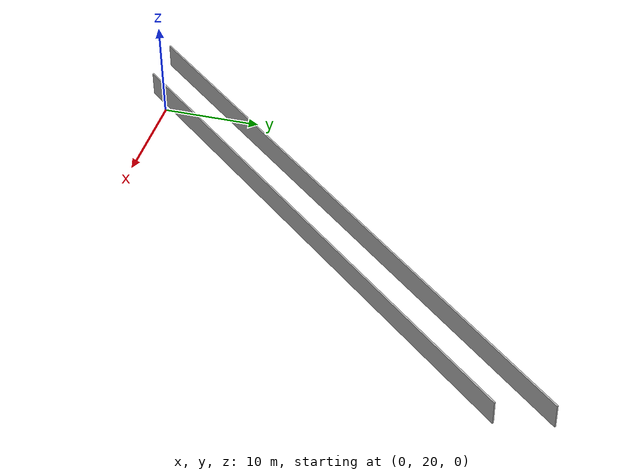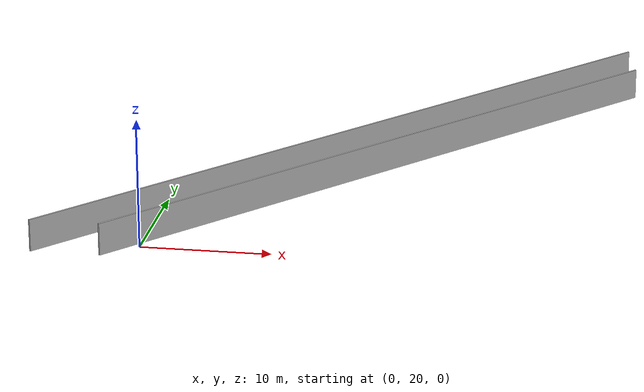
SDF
<?xml version="1.0" ?>
<sdf version="1.6">
  <model name="sps_1547">
    <pose frame="">0 0 0 0 -0 0</pose>
    <static>1</static>
    <self_collide>0</self_collide>
    <allow_auto_disable>0</allow_auto_disable>
    <link name="Wall226">
      <kinematic>0</kinematic>
      <gravity>1</gravity>
      <self_collide>0</self_collide>
      <collision name="collision">
        <geometry>
          <box>
            <size>56.7206 0.15 2.5</size>
          </box>
        </geometry>
        <pose frame="">0 0 0 0 -0 0</pose>
      </collision>
      <visual name="visual">
        <geometry>
          <box>
            <size>56.7206 0.15 2.5</size>
          </box>
        </geometry>
        <pose frame="">0 0 0 0 -0 0</pose>
        <cast_shadows>1</cast_shadows>
        <transparency>0.0</transparency>
      </visual>
      <pose frame="">15.9412 39.3643 1.25 0 0 -2.28275</pose>
    </link>
    <link name="Wall447">
      <kinematic>0</kinematic>
      <gravity>1</gravity>
      <self_collide>0</self_collide>
      <collision name="collision">
        <geometry>
          <box>
            <size>63.4001 0.15 2.5</size>
          </box>
        </geometry>
        <pose frame="">0 0 0 0 -0 0</pose>
      </collision>
      <visual name="visual">
        <geometry>
          <box>
            <size>63.4001 0.15 2.5</size>
          </box>
        </geometry>
        <pose frame="">0 0 0 0 -0 0</pose>
        <cast_shadows>1</cast_shadows>
        <transparency>0.0</transparency>
      </visual>
      <pose frame="">12.8374 41.893 1.25 0 0 -2.28274</pose>
    </link>
  </model>
</sdf>
